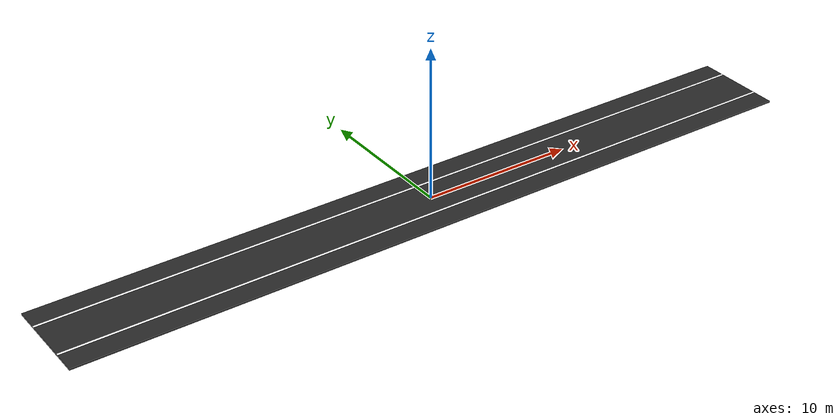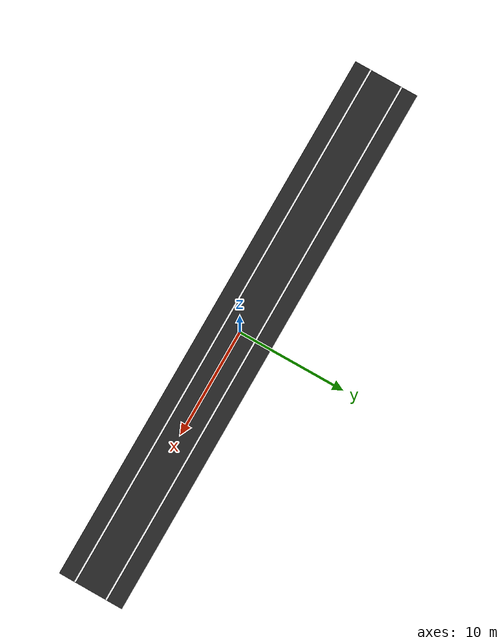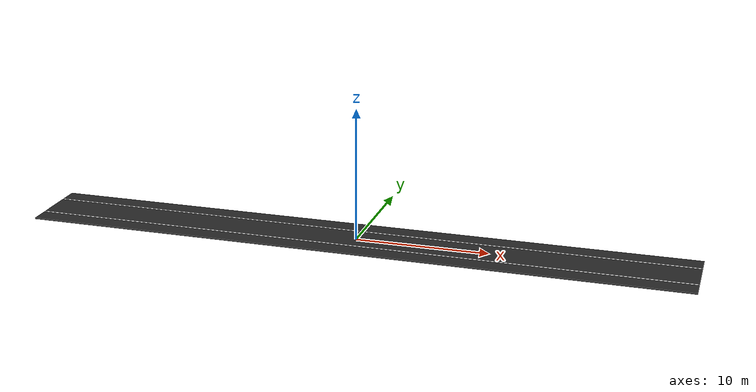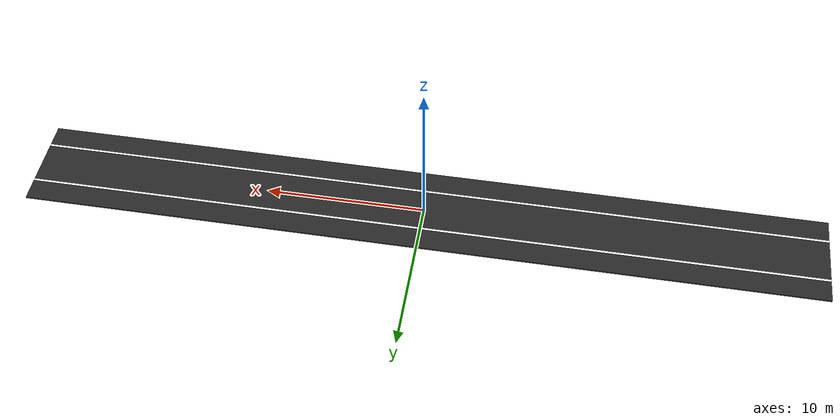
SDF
<?xml version="1.0" ?>
<sdf version="1.9">
  <world name="lane_following_world">

    <plugin filename="gz-sim-physics-system" name="gz::sim::systems::Physics"/>
    <plugin filename="gz-sim-scene-broadcaster-system" name="gz::sim::systems::SceneBroadcaster"/>
    <plugin filename="gz-sim-user-commands-system" name="gz::sim::systems::UserCommands"/>

    <light type="directional" name="sun">
      <cast_shadows>true</cast_shadows>
      <pose>0 0 10 0 0 0</pose>
      <diffuse>0.8 0.8 0.8 1</diffuse>
      <specular>0.2 0.2 0.2 1</specular>
      <direction>-0.5 0.1 -0.9</direction>
    </light>

    <model name="asphalt_track">
      <static>true</static> <link name="road_surface">
        <collision name="collision">
          <geometry><box><size>50.0 6.0 0.1</size></box></geometry>
        </collision>
        <visual name="visual">
          <geometry><box><size>50.0 6.0 0.1</size></box></geometry>
          <material>
            <ambient>0.15 0.15 0.15 1.0</ambient> <diffuse>0.15 0.15 0.15 1.0</diffuse>
          </material>
        </visual>
      </link>

      <link name="left_line">
        <pose>0.0 1.5 0.051 0 0 0</pose>
        <visual name="visual">
          <geometry><box><size>50.0 0.15 0.001</size></box></geometry>
          <material>
            <ambient>1.0 1.0 1.0 1.0</ambient> <diffuse>1.0 1.0 1.0 1.0</diffuse>
            <emissive>0.2 0.2 0.2 1.0</emissive> </material>
        </visual>
      </link>

      <link name="right_line">
        <pose>0.0 -1.5 0.051 0 0 0</pose>
        <visual name="visual">
          <geometry><box><size>50.0 0.15 0.001</size></box></geometry>
          <material>
            <ambient>1.0 1.0 1.0 1.0</ambient>
            <diffuse>1.0 1.0 1.0 1.0</diffuse>
            <emissive>0.2 0.2 0.2 1.0</emissive>
          </material>
        </visual>
      </link>

    </model>
  </world>
</sdf>
